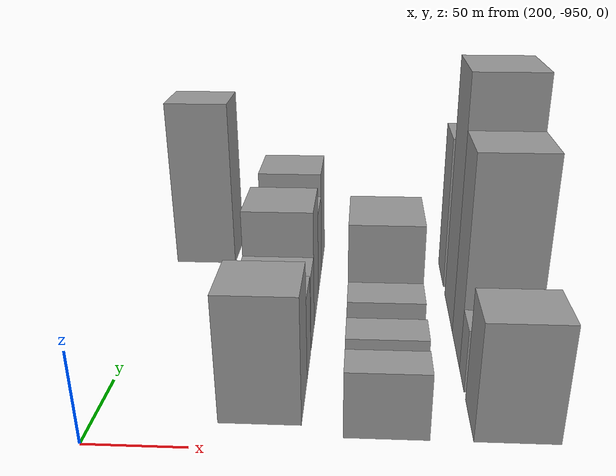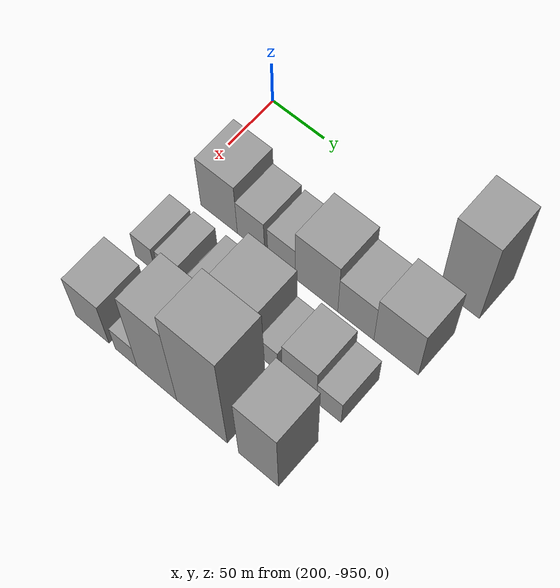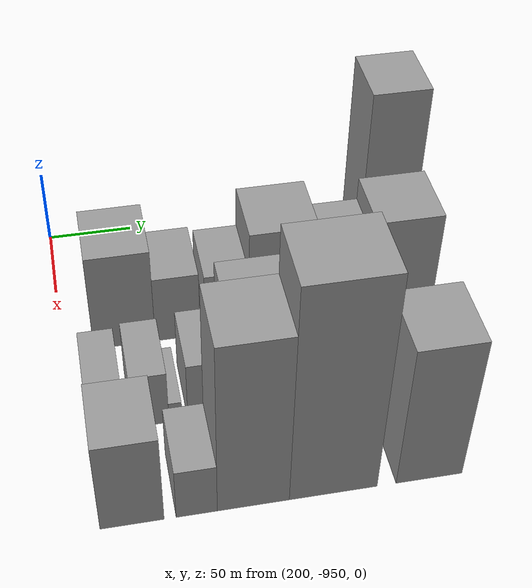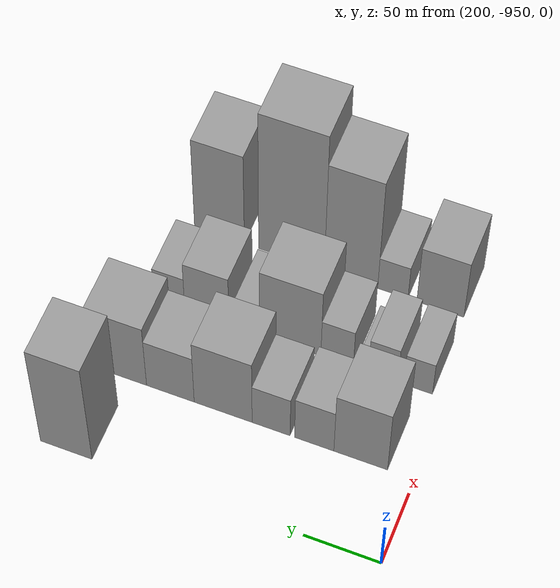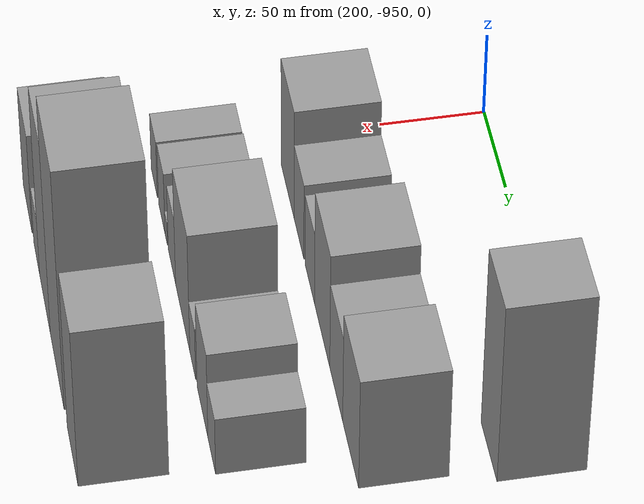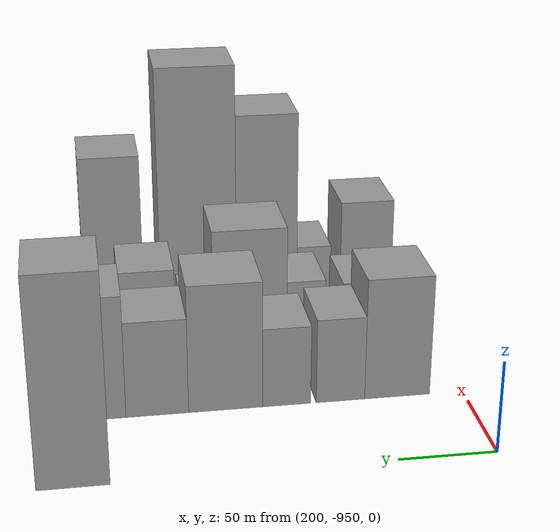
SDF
<sdf version="1.6">
 <world name="default">
  <model name="building_112">
   <static>1</static>
   <pose>220.0000 -743.1438 0 0.000000 0.000000 0.000000</pose>
   <link name="link">
    <pose>0 0 55.50 0 0 0</pose>
    <collision name="collision"><geometry><box><size>40.0000 34.7679 111.0000</size></box></geometry></collision>
    <visual name="visual">
     <cast_shadows>0</cast_shadows>
     <geometry><box><size>40.0000 34.7679 111.0000</size></box></geometry>
     <material>
      <script>
       <uri>model://grey_wall/materials/scripts</uri>
       <uri>model://grey_wall/materials/textures</uri>
       <name>vrc/grey_wall</name>
      </script>
     </material>
    </visual>
   </link>
  </model>
  <model name="building_161">
   <static>1</static>
   <pose>280.0000 -914.3825 0 0.000000 0.000000 0.000000</pose>
   <link name="link">
    <pose>0 0 34.50 0 0 0</pose>
    <collision name="collision"><geometry><box><size>40.0000 35.2350 69.0000</size></box></geometry></collision>
    <visual name="visual">
     <cast_shadows>0</cast_shadows>
     <geometry><box><size>40.0000 35.2350 69.0000</size></box></geometry>
     <material>
      <script>
       <uri>model://grey_wall/materials/scripts</uri>
       <uri>model://grey_wall/materials/textures</uri>
       <name>vrc/grey_wall</name>
      </script>
     </material>
    </visual>
   </link>
  </model>
  <model name="building_162">
   <static>1</static>
   <pose>280.0000 -883.7900 0 0.000000 0.000000 0.000000</pose>
   <link name="link">
    <pose>0 0 24.00 0 0 0</pose>
    <collision name="collision"><geometry><box><size>40.0000 25.9499 48.0000</size></box></geometry></collision>
    <visual name="visual">
     <cast_shadows>0</cast_shadows>
     <geometry><box><size>40.0000 25.9499 48.0000</size></box></geometry>
     <material>
      <script>
       <uri>model://grey_wall/materials/scripts</uri>
       <uri>model://grey_wall/materials/textures</uri>
       <name>vrc/grey_wall</name>
      </script>
     </material>
    </visual>
   </link>
  </model>
  <model name="building_163">
   <static>1</static>
   <pose>280.0000 -855.1792 0 0.000000 0.000000 0.000000</pose>
   <link name="link">
    <pose>0 0 22.50 0 0 0</pose>
    <collision name="collision"><geometry><box><size>40.0000 25.2717 45.0000</size></box></geometry></collision>
    <visual name="visual">
     <cast_shadows>0</cast_shadows>
     <geometry><box><size>40.0000 25.2717 45.0000</size></box></geometry>
     <material>
      <script>
       <uri>model://grey_wall/materials/scripts</uri>
       <uri>model://grey_wall/materials/textures</uri>
       <name>vrc/grey_wall</name>
      </script>
     </material>
    </visual>
   </link>
  </model>
  <model name="building_164">
   <static>1</static>
   <pose>280.0000 -823.0845 0 0.000000 0.000000 0.000000</pose>
   <link name="link">
    <pose>0 0 36.00 0 0 0</pose>
    <collision name="collision"><geometry><box><size>40.0000 38.9178 72.0000</size></box></geometry></collision>
    <visual name="visual">
     <cast_shadows>0</cast_shadows>
     <geometry><box><size>40.0000 38.9178 72.0000</size></box></geometry>
     <material>
      <script>
       <uri>model://grey_wall/materials/scripts</uri>
       <uri>model://grey_wall/materials/textures</uri>
       <name>vrc/grey_wall</name>
      </script>
     </material>
    </visual>
   </link>
  </model>
  <model name="building_165">
   <static>1</static>
   <pose>280.0000 -787.4795 0 0.000000 0.000000 0.000000</pose>
   <link name="link">
    <pose>0 0 27.00 0 0 0</pose>
    <collision name="collision"><geometry><box><size>40.0000 32.2922 54.0000</size></box></geometry></collision>
    <visual name="visual">
     <cast_shadows>0</cast_shadows>
     <geometry><box><size>40.0000 32.2922 54.0000</size></box></geometry>
     <material>
      <script>
       <uri>model://grey_wall/materials/scripts</uri>
       <uri>model://grey_wall/materials/textures</uri>
       <name>vrc/grey_wall</name>
      </script>
     </material>
    </visual>
   </link>
  </model>
  <model name="building_166">
   <static>1</static>
   <pose>280.0000 -751.8260 0 0.000000 0.000000 0.000000</pose>
   <link name="link">
    <pose>0 0 34.50 0 0 0</pose>
    <collision name="collision"><geometry><box><size>40.0000 39.0148 69.0000</size></box></geometry></collision>
    <visual name="visual">
     <cast_shadows>0</cast_shadows>
     <geometry><box><size>40.0000 39.0148 69.0000</size></box></geometry>
     <material>
      <script>
       <uri>model://grey_wall/materials/scripts</uri>
       <uri>model://grey_wall/materials/textures</uri>
       <name>vrc/grey_wall</name>
      </script>
     </material>
    </visual>
   </link>
  </model>
  <model name="building_217">
   <static>1</static>
   <pose>340.0000 -930.4887 0 0.000000 0.000000 0.000000</pose>
   <link name="link">
    <pose>0 0 18.00 0 0 0</pose>
    <collision name="collision"><geometry><box><size>40.0000 19.0226 36.0000</size></box></geometry></collision>
    <visual name="visual">
     <cast_shadows>0</cast_shadows>
     <geometry><box><size>40.0000 19.0226 36.0000</size></box></geometry>
     <material>
      <script>
       <uri>model://grey_wall/materials/scripts</uri>
       <uri>model://grey_wall/materials/textures</uri>
       <name>vrc/grey_wall</name>
      </script>
     </material>
    </visual>
   </link>
  </model>
  <model name="building_218">
   <static>1</static>
   <pose>340.0000 -907.1337 0 0.000000 0.000000 0.000000</pose>
   <link name="link">
    <pose>0 0 19.50 0 0 0</pose>
    <collision name="collision"><geometry><box><size>40.0000 19.6874 39.0000</size></box></geometry></collision>
    <visual name="visual">
     <cast_shadows>0</cast_shadows>
     <geometry><box><size>40.0000 19.6874 39.0000</size></box></geometry>
     <material>
      <script>
       <uri>model://grey_wall/materials/scripts</uri>
       <uri>model://grey_wall/materials/textures</uri>
       <name>vrc/grey_wall</name>
      </script>
     </material>
    </visual>
   </link>
  </model>
  <model name="building_219">
   <static>1</static>
   <pose>340.0000 -893.7316 0 0.000000 0.000000 0.000000</pose>
   <link name="link">
    <pose>0 0 7.50 0 0 0</pose>
    <collision name="collision"><geometry><box><size>40.0000 7.1168 15.0000</size></box></geometry></collision>
    <visual name="visual">
     <cast_shadows>0</cast_shadows>
     <geometry><box><size>40.0000 7.1168 15.0000</size></box></geometry>
     <material>
      <script>
       <uri>model://grey_wall/materials/scripts</uri>
       <uri>model://grey_wall/materials/textures</uri>
       <name>vrc/grey_wall</name>
      </script>
     </material>
    </visual>
   </link>
  </model>
  <model name="building_220">
   <static>1</static>
   <pose>340.0000 -876.2315 0 0.000000 0.000000 0.000000</pose>
   <link name="link">
    <pose>0 0 21.00 0 0 0</pose>
    <collision name="collision"><geometry><box><size>40.0000 21.8833 42.0000</size></box></geometry></collision>
    <visual name="visual">
     <cast_shadows>0</cast_shadows>
     <geometry><box><size>40.0000 21.8833 42.0000</size></box></geometry>
     <material>
      <script>
       <uri>model://grey_wall/materials/scripts</uri>
       <uri>model://grey_wall/materials/textures</uri>
       <name>vrc/grey_wall</name>
      </script>
     </material>
    </visual>
   </link>
  </model>
  <model name="building_221">
   <static>1</static>
   <pose>340.0000 -844.4123 0 0.000000 0.000000 0.000000</pose>
   <link name="link">
    <pose>0 0 37.50 0 0 0</pose>
    <collision name="collision"><geometry><box><size>40.0000 41.7550 75.0000</size></box></geometry></collision>
    <visual name="visual">
     <cast_shadows>0</cast_shadows>
     <geometry><box><size>40.0000 41.7550 75.0000</size></box></geometry>
     <material>
      <script>
       <uri>model://grey_wall/materials/scripts</uri>
       <uri>model://grey_wall/materials/textures</uri>
       <name>vrc/grey_wall</name>
      </script>
     </material>
    </visual>
   </link>
  </model>
  <model name="building_222">
   <static>1</static>
   <pose>340.0000 -815.1343 0 0.000000 0.000000 0.000000</pose>
   <link name="link">
    <pose>0 0 16.50 0 0 0</pose>
    <collision name="collision"><geometry><box><size>40.0000 16.8010 33.0000</size></box></geometry></collision>
    <visual name="visual">
     <cast_shadows>0</cast_shadows>
     <geometry><box><size>40.0000 16.8010 33.0000</size></box></geometry>
     <material>
      <script>
       <uri>model://grey_wall/materials/scripts</uri>
       <uri>model://grey_wall/materials/textures</uri>
       <name>vrc/grey_wall</name>
      </script>
     </material>
    </visual>
   </link>
  </model>
  <model name="building_223">
   <static>1</static>
   <pose>340.0000 -787.4586 0 0.000000 0.000000 0.000000</pose>
   <link name="link">
    <pose>0 0 27.00 0 0 0</pose>
    <collision name="collision"><geometry><box><size>40.0000 30.5504 54.0000</size></box></geometry></collision>
    <visual name="visual">
     <cast_shadows>0</cast_shadows>
     <geometry><box><size>40.0000 30.5504 54.0000</size></box></geometry>
     <material>
      <script>
       <uri>model://grey_wall/materials/scripts</uri>
       <uri>model://grey_wall/materials/textures</uri>
       <name>vrc/grey_wall</name>
      </script>
     </material>
    </visual>
   </link>
  </model>
  <model name="building_224">
   <static>1</static>
   <pose>340.0000 -761.4592 0 0.000000 0.000000 0.000000</pose>
   <link name="link">
    <pose>0 0 18.00 0 0 0</pose>
    <collision name="collision"><geometry><box><size>40.0000 21.4483 36.0000</size></box></geometry></collision>
    <visual name="visual">
     <cast_shadows>0</cast_shadows>
     <geometry><box><size>40.0000 21.4483 36.0000</size></box></geometry>
     <material>
      <script>
       <uri>model://grey_wall/materials/scripts</uri>
       <uri>model://grey_wall/materials/textures</uri>
       <name>vrc/grey_wall</name>
      </script>
     </material>
    </visual>
   </link>
  </model>
  <model name="building_276">
   <static>1</static>
   <pose>400.0000 -924.0854 0 0.000000 0.000000 0.000000</pose>
   <link name="link">
    <pose>0 0 31.50 0 0 0</pose>
    <collision name="collision"><geometry><box><size>40.0000 31.8293 63.0000</size></box></geometry></collision>
    <visual name="visual">
     <cast_shadows>0</cast_shadows>
     <geometry><box><size>40.0000 31.8293 63.0000</size></box></geometry>
     <material>
      <script>
       <uri>model://grey_wall/materials/scripts</uri>
       <uri>model://grey_wall/materials/textures</uri>
       <name>vrc/grey_wall</name>
      </script>
     </material>
    </visual>
   </link>
  </model>
  <model name="building_277">
   <static>1</static>
   <pose>400.0000 -891.8265 0 0.000000 0.000000 0.000000</pose>
   <link name="link">
    <pose>0 0 18.00 0 0 0</pose>
    <collision name="collision"><geometry><box><size>40.0000 20.6885 36.0000</size></box></geometry></collision>
    <visual name="visual">
     <cast_shadows>0</cast_shadows>
     <geometry><box><size>40.0000 20.6885 36.0000</size></box></geometry>
     <material>
      <script>
       <uri>model://grey_wall/materials/scripts</uri>
       <uri>model://grey_wall/materials/textures</uri>
       <name>vrc/grey_wall</name>
      </script>
     </material>
    </visual>
   </link>
  </model>
  <model name="building_278">
   <static>1</static>
   <pose>400.0000 -863.1305 0 0.000000 0.000000 0.000000</pose>
   <link name="link">
    <pose>0 0 60.00 0 0 0</pose>
    <collision name="collision"><geometry><box><size>40.0000 36.7036 120.0000</size></box></geometry></collision>
    <visual name="visual">
     <cast_shadows>0</cast_shadows>
     <geometry><box><size>40.0000 36.7036 120.0000</size></box></geometry>
     <material>
      <script>
       <uri>model://grey_wall/materials/scripts</uri>
       <uri>model://grey_wall/materials/textures</uri>
       <name>vrc/grey_wall</name>
      </script>
     </material>
    </visual>
   </link>
  </model>
  <model name="building_279">
   <static>1</static>
   <pose>400.0000 -821.9582 0 0.000000 0.000000 0.000000</pose>
   <link name="link">
    <pose>0 0 75.00 0 0 0</pose>
    <collision name="collision"><geometry><box><size>40.0000 45.6410 150.0000</size></box></geometry></collision>
    <visual name="visual">
     <cast_shadows>0</cast_shadows>
     <geometry><box><size>40.0000 45.6410 150.0000</size></box></geometry>
     <material>
      <script>
       <uri>model://grey_wall/materials/scripts</uri>
       <uri>model://grey_wall/materials/textures</uri>
       <name>vrc/grey_wall</name>
      </script>
     </material>
    </visual>
   </link>
  </model>
  <model name="building_280">
   <static>1</static>
   <pose>400.0000 -771.6382 0 0.000000 0.000000 0.000000</pose>
   <link name="link">
    <pose>0 0 49.50 0 0 0</pose>
    <collision name="collision"><geometry><box><size>40.0000 34.9990 99.0000</size></box></geometry></collision>
    <visual name="visual">
     <cast_shadows>0</cast_shadows>
     <geometry><box><size>40.0000 34.9990 99.0000</size></box></geometry>
     <material>
      <script>
       <uri>model://grey_wall/materials/scripts</uri>
       <uri>model://grey_wall/materials/textures</uri>
       <name>vrc/grey_wall</name>
      </script>
     </material>
    </visual>
   </link>
  </model>
 </world>
</sdf>
